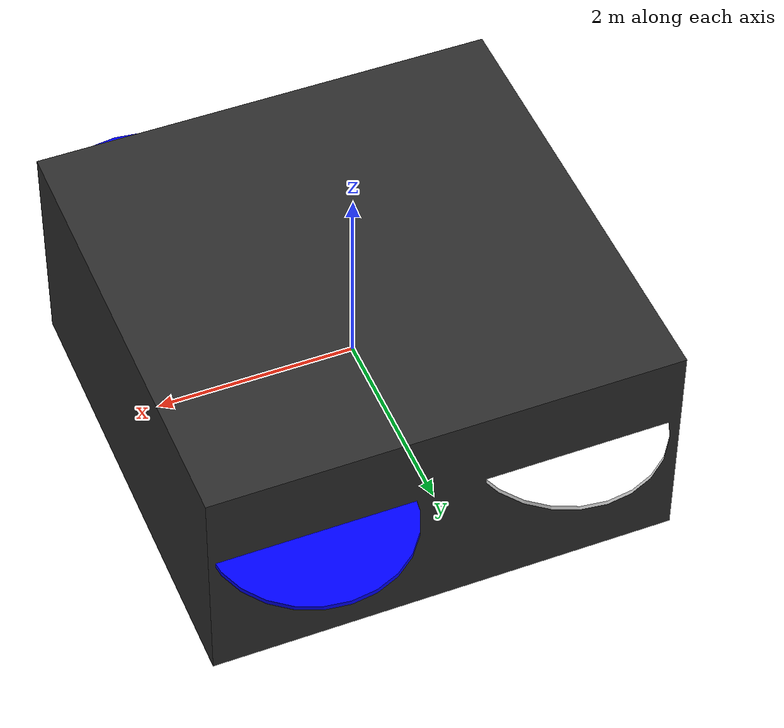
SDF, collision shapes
<?xml version='1.0'?>
<sdf version="1.9">
  <model name="iris_with_ardupilot">
    <include>
      <uri>model://iris_with_standoffs_large</uri>
    </include>

    <!--
      visual markers for debugging
      - blade root    - teal
      - blade tip     - orange
      - blade cp      - yellow
      - blade forward - red
      - blade upward  - blue
    -->

    <!-- plugins -->
    <plugin filename="gz-sim-joint-state-publisher-system"
      name="gz::sim::systems::JointStatePublisher">
    </plugin>
    <plugin filename="gz-sim-lift-drag-system"
        name="gz::sim::systems::LiftDrag">
      <a0>0.3</a0>
      <alpha_stall>1.4</alpha_stall>
      <cla>4.2500</cla>
      <cda>0.10</cda>
      <cma>0.00</cma>
      <cla_stall>-0.025</cla_stall>
      <cda_stall>0.0</cda_stall>
      <cma_stall>0.0</cma_stall>
      <area>0.002</area>
      <air_density>1.2041</air_density>
      <cp>0.084 0 0</cp>
      <forward>0 1 0</forward>
      <upward>0 0 1</upward>
      <link_name>iris_with_standoffs_large::rotor_0</link_name>
    </plugin>
    <plugin filename="gz-sim-lift-drag-system"
        name="gz::sim::systems::LiftDrag">
      <a0>0.3</a0>
      <alpha_stall>1.4</alpha_stall>
      <cla>4.2500</cla>
      <cda>0.10</cda>
      <cma>0.00</cma>
      <cla_stall>-0.025</cla_stall>
      <cda_stall>0.0</cda_stall>
      <cma_stall>0.0</cma_stall>
      <area>0.002</area>
      <air_density>1.2041</air_density>
      <cp>-0.084 0 0</cp>
      <forward>0 -1 0</forward>
      <upward>0 0 1</upward>
      <link_name>iris_with_standoffs_large::rotor_0</link_name>
    </plugin>

    <plugin filename="gz-sim-lift-drag-system"
        name="gz::sim::systems::LiftDrag">
      <a0>0.3</a0>
      <alpha_stall>1.4</alpha_stall>
      <cla>4.2500</cla>
      <cda>0.10</cda>
      <cma>0.00</cma>
      <cla_stall>-0.025</cla_stall>
      <cda_stall>0.0</cda_stall>
      <cma_stall>0.0</cma_stall>
      <area>0.002</area>
      <air_density>1.2041</air_density>
      <cp>0.084 0 0</cp>
      <forward>0 1 0</forward>
      <upward>0 0 1</upward>
      <link_name>iris_with_standoffs_large::rotor_1</link_name>
    </plugin>
    <plugin filename="gz-sim-lift-drag-system"
        name="gz::sim::systems::LiftDrag">
      <a0>0.3</a0>
      <alpha_stall>1.4</alpha_stall>
      <cla>4.2500</cla>
      <cda>0.10</cda>
      <cma>0.00</cma>
      <cla_stall>-0.025</cla_stall>
      <cda_stall>0.0</cda_stall>
      <cma_stall>0.0</cma_stall>
      <area>0.002</area>
      <air_density>1.2041</air_density>
      <cp>-0.084 0 0</cp>
      <forward>0 -1 0</forward>
      <upward>0 0 1</upward>
      <link_name>iris_with_standoffs_large::rotor_1</link_name>
    </plugin>

    <plugin filename="gz-sim-lift-drag-system"
        name="gz::sim::systems::LiftDrag">
      <a0>0.3</a0>
      <alpha_stall>1.4</alpha_stall>
      <cla>4.2500</cla>
      <cda>0.10</cda>
      <cma>0.00</cma>
      <cla_stall>-0.025</cla_stall>
      <cda_stall>0.0</cda_stall>
      <cma_stall>0.0</cma_stall>
      <area>0.002</area>
      <air_density>1.2041</air_density>
      <cp>0.084 0 0</cp>
      <forward>0 -1 0</forward>
      <upward>0 0 1</upward>
      <link_name>iris_with_standoffs_large::rotor_2</link_name>
    </plugin>
    <plugin filename="gz-sim-lift-drag-system"
        name="gz::sim::systems::LiftDrag">
      <a0>0.3</a0>
      <alpha_stall>1.4</alpha_stall>
      <cla>4.2500</cla>
      <cda>0.10</cda>
      <cma>0.00</cma>
      <cla_stall>-0.025</cla_stall>
      <cda_stall>0.0</cda_stall>
      <cma_stall>0.0</cma_stall>
      <area>0.002</area>
      <air_density>1.2041</air_density>
      <cp>-0.084 0 0</cp>
      <forward>0 1 0</forward>
      <upward>0 0 1</upward>
      <link_name>iris_with_standoffs_large::rotor_2</link_name>
    </plugin>

    <plugin filename="gz-sim-lift-drag-system"
        name="gz::sim::systems::LiftDrag">
      <a0>0.3</a0>
      <alpha_stall>1.4</alpha_stall>
      <cla>4.2500</cla>
      <cda>0.10</cda>
      <cma>0.00</cma>
      <cla_stall>-0.025</cla_stall>
      <cda_stall>0.0</cda_stall>
      <cma_stall>0.0</cma_stall>
      <area>0.002</area>
      <air_density>1.2041</air_density>
      <cp>0.084 0 0</cp>
      <forward>0 -1 0</forward>
      <upward>0 0 1</upward>
      <link_name>iris_with_standoffs_large::rotor_3</link_name>
    </plugin>
    <plugin filename="gz-sim-lift-drag-system"
        name="gz::sim::systems::LiftDrag">
      <a0>0.3</a0>
      <alpha_stall>1.4</alpha_stall>
      <cla>4.2500</cla>
      <cda>0.10</cda>
      <cma>0.00</cma>
      <cla_stall>-0.025</cla_stall>
      <cda_stall>0.0</cda_stall>
      <cma_stall>0.0</cma_stall>
      <area>0.002</area>
      <air_density>1.2041</air_density>
      <cp>-0.084 0 0</cp>
      <forward>0 1 0</forward>
      <upward>0 0 1</upward>
      <link_name>iris_with_standoffs_large::rotor_3</link_name>
    </plugin>

    <plugin filename="gz-sim-apply-joint-force-system"
      name="gz::sim::systems::ApplyJointForce">
      <joint_name>iris_with_standoffs_large::rotor_0_joint</joint_name>
    </plugin>
    <plugin filename="gz-sim-apply-joint-force-system"
      name="gz::sim::systems::ApplyJointForce">
      <joint_name>iris_with_standoffs_large::rotor_1_joint</joint_name>
    </plugin>
    <plugin filename="gz-sim-apply-joint-force-system"
      name="gz::sim::systems::ApplyJointForce">
      <joint_name>iris_with_standoffs_large::rotor_2_joint</joint_name>
    </plugin>
    <plugin filename="gz-sim-apply-joint-force-system"
      name="gz::sim::systems::ApplyJointForce">
      <joint_name>iris_with_standoffs_large::rotor_3_joint</joint_name>
    </plugin>

    <plugin name="ArduPilotPlugin"
      filename="ArduPilotPlugin">
      <!-- Port settings -->
      <fdm_addr>127.0.0.1</fdm_addr>
      <fdm_port_in>9002</fdm_port_in>
      <connectionTimeoutMaxCount>5</connectionTimeoutMaxCount>
      <lock_step>1</lock_step>
      <have_32_channels>0</have_32_channels>

      <!-- Frame conventions
        Require by ArduPilot: change model and gazebo from XYZ to XY-Z coordinates
      -->
      <modelXYZToAirplaneXForwardZDown>0 0 0 3.141593 0 0</modelXYZToAirplaneXForwardZDown>
      <gazeboXYZToNED>0 0 0 3.141593 0 0</gazeboXYZToNED>

      <!-- Sensors -->
      <imuName>iris_with_standoffs_large::imu_link::imu_sensor</imuName>

      <!--
          incoming control command [0, 1]
          so offset it by 0 to get [0, 1]
          and divide max target by 1.
          offset = 0
          multiplier = 838 max rpm / 1 = 838
        -->
      <control channel="0">
        <jointName>iris_with_standoffs_large::rotor_0_joint</jointName>
        <useForce>1</useForce>
        <multiplier>838</multiplier>
        <offset>0</offset>
        <servo_min>1100</servo_min>
        <servo_max>1900</servo_max>
        <type>VELOCITY</type>
        <p_gain>0.20</p_gain>
        <i_gain>0</i_gain>
        <d_gain>0</d_gain>
        <i_max>0</i_max>
        <i_min>0</i_min>
        <cmd_max>2.5</cmd_max>
        <cmd_min>-2.5</cmd_min>
        <controlVelocitySlowdownSim>1</controlVelocitySlowdownSim>
      </control>

      <control channel="1">
        <jointName>iris_with_standoffs_large::rotor_1_joint</jointName>
        <useForce>1</useForce>
        <multiplier>838</multiplier>
        <offset>0</offset>
        <servo_min>1100</servo_min>
        <servo_max>1900</servo_max>
        <type>VELOCITY</type>
        <p_gain>0.20</p_gain>
        <i_gain>0</i_gain>
        <d_gain>0</d_gain>
        <i_max>0</i_max>
        <i_min>0</i_min>
        <cmd_max>2.5</cmd_max>
        <cmd_min>-2.5</cmd_min>
        <controlVelocitySlowdownSim>1</controlVelocitySlowdownSim>
      </control>

      <control channel="2">
        <jointName>iris_with_standoffs_large::rotor_2_joint</jointName>
        <useForce>1</useForce>
        <multiplier>-838</multiplier>
        <offset>0</offset>
        <servo_min>1100</servo_min>
        <servo_max>1900</servo_max>
        <type>VELOCITY</type>
        <p_gain>0.20</p_gain>
        <i_gain>0</i_gain>
        <d_gain>0</d_gain>
        <i_max>0</i_max>
        <i_min>0</i_min>
        <cmd_max>2.5</cmd_max>
        <cmd_min>-2.5</cmd_min>
        <controlVelocitySlowdownSim>1</controlVelocitySlowdownSim>
      </control>

      <control channel="3">
        <jointName>iris_with_standoffs_large::rotor_3_joint</jointName>
        <useForce>1</useForce>
        <multiplier>-838</multiplier>
        <offset>0</offset>
        <servo_min>1100</servo_min>
        <servo_max>1900</servo_max>
        <type>VELOCITY</type>
        <p_gain>0.20</p_gain>
        <i_gain>0</i_gain>
        <d_gain>0</d_gain>
        <i_max>0</i_max>
        <i_min>0</i_min>
        <cmd_max>2.5</cmd_max>
        <cmd_min>-2.5</cmd_min>
        <controlVelocitySlowdownSim>1</controlVelocitySlowdownSim>
      </control>

    </plugin>

  </model>
</sdf>

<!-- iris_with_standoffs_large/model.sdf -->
<sdf version='1.9'>
  <model name='iris_with_standoffs_large'>
    <pose>0 0 0.194923 0 0 0</pose>
    <link name='base_link'>
      <velocity_decay>
        <linear>0.0</linear>
        <angular>0.0</angular>
      </velocity_decay>
      <inertial>
        <pose>0 0 0 0 0 0</pose>
        <mass>1.5</mass>
        <inertia>
          <ixx>0.008</ixx>
          <ixy>0</ixy>
          <ixz>0</ixz>
          <iyy>0.015</iyy>
          <iyz>0</iyz>
          <izz>0.017</izz>
        </inertia>
      </inertial>
      <collision name='base_collision'>
        <pose>0 0 -0.08 0 0 0</pose>
        <geometry>
          <box>
            <size>4.7 4.7 2.3</size>
          </box>
        </geometry>
        <surface>
          <contact>
            <ode>
              <max_vel>100.0</max_vel>
              <min_depth>0.001</min_depth>
            </ode>
          </contact>
          <friction>
            <ode>
              <mu>100000.0</mu>
              <mu2>100000.0</mu2>
            </ode>
          </friction>
        </surface>
      </collision>
      <visual name='base_visual'>
        <geometry>
          <mesh>
            <uri>model://iris_with_standoffs_large/meshes/iris.dae</uri>
          </mesh>
        </geometry>
        <material>
          <ambient>.175 .175 .175  1.0</ambient>
          <diffuse>.175 .175 .175  1.0</diffuse>
          <specular>.175 .175 .175 1.000000</specular>
        </material>
      </visual>

      <visual name='front_left_leg_visual'>
        <pose>1.23 2.2 -1.1 0 0 0</pose>
        <geometry>
          <cylinder>
            <radius>0.05</radius>
            <length>1.7</length>
          </cylinder>
        </geometry>
        <material>
          <ambient>0.1 0.1 0.1</ambient>
          <diffuse>0.1 0.1 0.1</diffuse>
          <specular>0.01 0.01 0.01 1.0</specular>
        </material>
      </visual>
      <visual name='front_right_leg_visual'>
        <pose>1.23 -2.2 -1.1 0 0 0</pose>
        <geometry>
          <cylinder>
            <radius>0.05</radius>
            <length>1.7</length>
          </cylinder>
        </geometry>
        <material>
          <ambient>0.1 0.1 0.1</ambient>
          <diffuse>0.1 0.1 0.1</diffuse>
          <specular>0.01 0.01 0.01 1.0</specular>
        </material>
      </visual>
      <visual name='rear_left_leg_visual'>
        <pose>-1.40 2.1 -1.1 0 0 0</pose>
        <geometry>
          <cylinder>
            <radius>0.05</radius>
            <length>1.7</length>
          </cylinder>
        </geometry>
        <material>
          <ambient>0.1 0.1 0.1</ambient>
          <diffuse>0.1 0.1 0.1</diffuse>
          <specular>0.01 0.01 0.01 1.0</specular>
        </material>
      </visual>
      <visual name='rear_right_leg_visual'>
        <pose>-1.40 -2.1 -1.1 0 0 0</pose>
        <geometry>
          <cylinder>
            <radius>0.05</radius>
            <length>1.7</length>
          </cylinder>
        </geometry>
        <material>
          <ambient>0.1 0.1 0.1</ambient>
          <diffuse>0.1 0.1 0.1</diffuse>
          <specular>0.01 0.01 0.01 1.0</specular>
        </material>
      </visual>
    </link>
    <link name='imu_link'>
      <inertial>
        <pose>0 0 0 0 0 0</pose>
        <mass>0.15</mass>
        <inertia>
          <ixx>0.00001</ixx>
          <ixy>0</ixy>
          <ixz>0</ixz>
          <iyy>0.00002</iyy>
          <iyz>0</iyz>
          <izz>0.00002</izz>
        </inertia>
      </inertial>
      <sensor name="imu_sensor" type="imu">
        <pose>0 0 0 3.141593 0 0</pose>
        <always_on>1</always_on>
        <update_rate>1000.0</update_rate>
      </sensor>
    </link>
    <joint name='imu_joint' type='revolute'>
      <child>imu_link</child>
      <parent>base_link</parent>
      <axis>
        <xyz>0 0 1</xyz>
        <limit>
          <lower>0</lower>
          <upper>0</upper>
          <effort>0</effort>
          <velocity>0</velocity>
        </limit>
        <dynamics>
          <damping>1.0</damping>
        </dynamics>
      </axis>
    </joint>
    <link name='rotor_0'>
      <pose>1.3 -2.2 0.23 0 -0 0</pose>
      <inertial>
        <pose>0 0 0 0 -0 0</pose>
        <mass>0.025</mass>
        <inertia>
          <ixx>9.75e-06</ixx>
          <ixy>0</ixy>
          <ixz>0</ixz>
          <iyy>0.000166704</iyy>
          <iyz>0</iyz>
          <izz>0.000167604</izz>
        </inertia>
      </inertial>
      <collision name='rotor_0_collision'>
        <pose>0 0 0 0 -0 0</pose>
        <geometry>
          <cylinder>
            <length>0.05</length>
            <radius>1</radius>
          </cylinder>
        </geometry>
        <surface>
          <contact>
            <ode/>
          </contact>
          <friction>
            <ode/>
          </friction>
        </surface>
      </collision>
      <visual name='rotor_0_visual'>
        <pose>0 0 0 0 -0 0</pose>
        <geometry>
          <mesh>
            <scale>1 1 1</scale>
            <uri>model://iris_with_standoffs_large/meshes/iris_prop_ccw.dae</uri>
          </mesh>
        </geometry>
        <material>
          <ambient>0 0 1</ambient>
          <diffuse>0 0 1</diffuse>
          <specular>0.1 0.1 0.1 1</specular>
        </material>
      </visual>
      <gravity>1</gravity>
      <velocity_decay/>
      <self_collide>0</self_collide>
    </link>
    <joint name='rotor_0_joint' type='revolute'>
      <child>rotor_0</child>
      <parent>base_link</parent>
      <axis>
        <xyz>0 0 1</xyz>
        <limit>
          <lower>-1e+16</lower>
          <upper>1e+16</upper>
        </limit>
        <dynamics>
          <damping>0.004</damping>
        </dynamics>
      </axis>
      <physics>
        <ode>
          <implicit_spring_damper>1</implicit_spring_damper>
        </ode>
      </physics>
    </joint>
    <link name='rotor_1'>
      <pose>-1.3 2 0.23 0 -0 0</pose>
      <inertial>
        <pose>0 0 0 0 -0 0</pose>
        <mass>0.025</mass>
        <inertia>
          <ixx>9.75e-06</ixx>
          <ixy>0</ixy>
          <ixz>0</ixz>
          <iyy>0.000166704</iyy>
          <iyz>0</iyz>
          <izz>0.000167604</izz>
        </inertia>
      </inertial>
      <collision name='rotor_1_collision'>
        <pose>0 0 0 0 -0 0</pose>
        <geometry>
          <cylinder>
            <length>0.05</length>
            <radius>1</radius>
          </cylinder>
        </geometry>
        <surface>
          <contact>
            <ode/>
          </contact>
          <friction>
            <ode/>
          </friction>
        </surface>
      </collision>
      <visual name='rotor_1_visual'>
        <pose>0 0 0 0 -0 0</pose>
        <geometry>
          <mesh>
            <scale>1 1 1</scale>
            <uri>model://iris_with_standoffs_large/meshes/iris_prop_ccw.dae</uri>
          </mesh>
        </geometry>
        <material>
          <ambient>1 1 1 1</ambient>
          <diffuse>1 1 1 1</diffuse>
          <specular>.1 .1 .1 1</specular>
        </material>
      </visual>
      <gravity>1</gravity>
      <velocity_decay/>
      <self_collide>0</self_collide>
    </link>
    <joint name='rotor_1_joint' type='revolute'>
      <child>rotor_1</child>
      <parent>base_link</parent>
      <axis>
        <xyz>0 0 1</xyz>
        <limit>
          <lower>-1e+16</lower>
          <upper>1e+16</upper>
        </limit>
        <dynamics>
          <damping>0.004</damping>
        </dynamics>
      </axis>
      <physics>
        <ode>
          <implicit_spring_damper>1</implicit_spring_damper>
        </ode>
      </physics>
    </joint>
    <link name='rotor_2'>
      <pose>1.3 2.2 0.23 0 -0 0</pose>
      <inertial>
        <pose>0 0 0 0 -0 0</pose>
        <mass>0.025</mass>
        <inertia>
          <ixx>9.75e-06</ixx>
          <ixy>0</ixy>
          <ixz>0</ixz>
          <iyy>0.000166704</iyy>
          <iyz>0</iyz>
          <izz>0.000167604</izz>
        </inertia>
      </inertial>
      <collision name='rotor_2_collision'>
        <pose>0 0 0 0 -0 0</pose>
        <geometry>
          <cylinder>
            <length>0.05</length>
            <radius>1</radius>
          </cylinder>
        </geometry>
        <surface>
          <contact>
            <ode/>
          </contact>
          <friction>
            <ode/>
          </friction>
        </surface>
      </collision>
      <visual name='rotor_2_visual'>
        <pose>0 0 0 0 -0 0</pose>
        <geometry>
          <mesh>
            <scale>1 1 1</scale>
            <uri>model://iris_with_standoffs_large/meshes/iris_prop_cw.dae</uri>
          </mesh>
        </geometry>
        <material>
          <ambient>0 0 1</ambient>
          <diffuse>0 0 1</diffuse>
          <specular>0.1 0.1 0.1 1</specular>
        </material>
      </visual>
      <gravity>1</gravity>
      <velocity_decay/>
      <self_collide>0</self_collide>
    </link>
    <joint name='rotor_2_joint' type='revolute'>
      <child>rotor_2</child>
      <parent>base_link</parent>
      <axis>
        <xyz>0 0 1</xyz>
        <limit>
          <lower>-1e+16</lower>
          <upper>1e+16</upper>
        </limit>
        <dynamics>
          <damping>0.004</damping>
        </dynamics>
      </axis>
      <physics>
        <ode>
          <implicit_spring_damper>1</implicit_spring_damper>
        </ode>
      </physics>
    </joint>
    <link name='rotor_3'>
      <pose>-1.3 -2 0.23 0 -0 0</pose>
      <inertial>
        <pose>0 0 0 0 -0 0</pose>
        <mass>0.025</mass>
        <inertia>
          <ixx>9.75e-06</ixx>
          <ixy>0</ixy>
          <ixz>0</ixz>
          <iyy>0.000166704</iyy>
          <iyz>0</iyz>
          <izz>0.000167604</izz>
        </inertia>
      </inertial>
      <collision name='rotor_3_collision'>
        <pose>0 0 0 0 -0 0</pose>
        <geometry>
          <cylinder>
            <length>0.05</length>
            <radius>1</radius>
          </cylinder>
        </geometry>
        <surface>
          <contact>
            <ode/>
          </contact>
          <friction>
            <ode/>
          </friction>
        </surface>
      </collision>
      <visual name='rotor_3_visual'>
        <pose>0 0 0 0 -0 0</pose>
        <geometry>
          <mesh>
            <scale>1 1 1</scale>
            <uri>model://iris_with_standoffs_large/meshes/iris_prop_cw.dae</uri>
          </mesh>
        </geometry>
        <material>
          <ambient>1 1 1 1</ambient>
          <diffuse>1 1 1 1</diffuse>
          <specular>.1 .1 .1 1</specular>
        </material>
      </visual>
      <gravity>1</gravity>
      <velocity_decay/>
      <self_collide>0</self_collide>
    </link>
    <joint name='rotor_3_joint' type='revolute'>
      <child>rotor_3</child>
      <parent>base_link</parent>
      <axis>
        <xyz>0 0 1</xyz>
        <limit>
          <lower>-1e+16</lower>
          <upper>1e+16</upper>
        </limit>
        <dynamics>
          <damping>0.004</damping>
        </dynamics>
      </axis>
      <physics>
        <ode>
          <implicit_spring_damper>1</implicit_spring_damper>
        </ode>
      </physics>
    </joint>
  </model>
</sdf>
